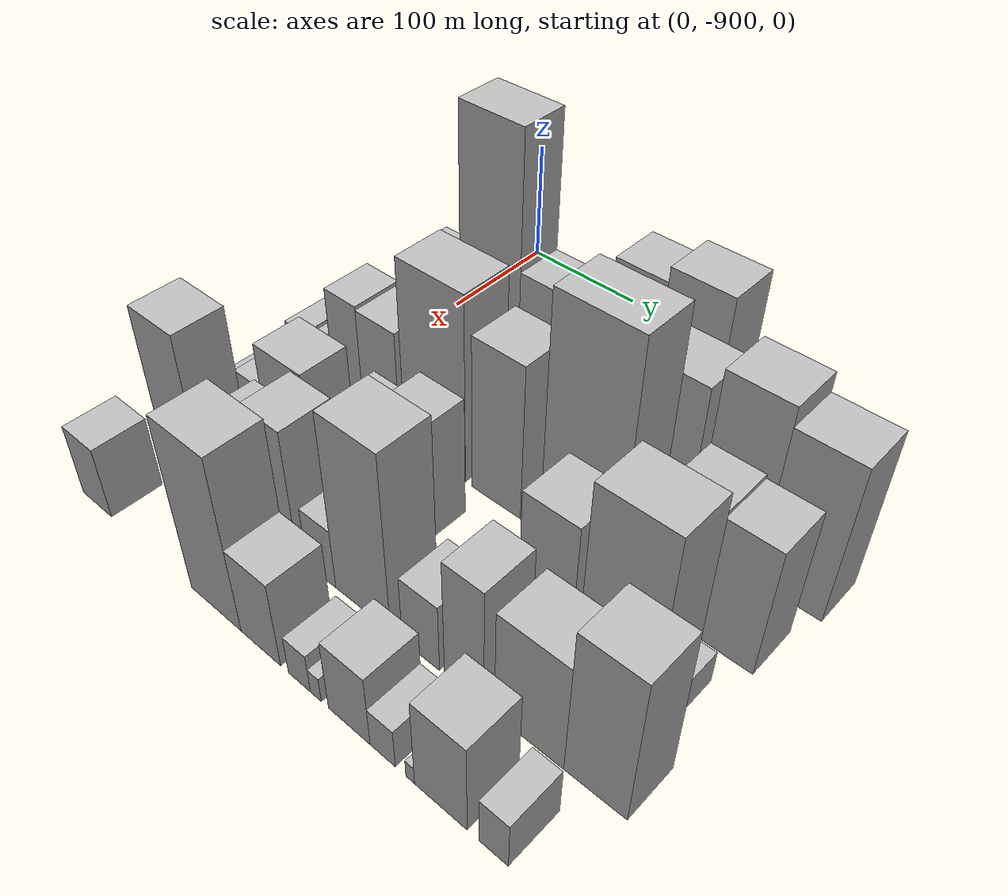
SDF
<sdf version="1.6">
 <world name="default">
  <model name="building_1">
   <static>1</static>
   <pose>100.0000 -915.0961 0 0.000000 0.000000 0.000000</pose>
   <link name="link">
    <pose>0 0 25.50 0 0 0</pose>
    <collision name="collision"><geometry><box><size>40.0000 29.8078 51.0000</size></box></geometry></collision>
    <visual name="visual">
     <cast_shadows>0</cast_shadows>
     <geometry><box><size>40.0000 29.8078 51.0000</size></box></geometry>
     <material>
      <script>
       <uri>model://HANNAS_wall/materials/scripts</uri>
       <uri>model://HANNAS_wall/materials/textures</uri>
       <name>vrc/HANNAS_wall</name>
      </script>
     </material>
    </visual>
   </link>
  </model>
  <model name="building_2">
   <static>1</static>
   <pose>100.0000 -888.7581 0 0.000000 0.000000 0.000000</pose>
   <link name="link">
    <pose>0 0 19.50 0 0 0</pose>
    <collision name="collision"><geometry><box><size>40.0000 22.8681 39.0000</size></box></geometry></collision>
    <visual name="visual">
     <cast_shadows>0</cast_shadows>
     <geometry><box><size>40.0000 22.8681 39.0000</size></box></geometry>
     <material>
      <script>
       <uri>model://HANNAS_wall/materials/scripts</uri>
       <uri>model://HANNAS_wall/materials/textures</uri>
       <name>vrc/HANNAS_wall</name>
      </script>
     </material>
    </visual>
   </link>
  </model>
  <model name="building_3">
   <static>1</static>
   <pose>100.0000 -847.5174 0 0.000000 0.000000 0.000000</pose>
   <link name="link">
    <pose>0 0 97.50 0 0 0</pose>
    <collision name="collision"><geometry><box><size>40.0000 59.6133 195.0000</size></box></geometry></collision>
    <visual name="visual">
     <cast_shadows>0</cast_shadows>
     <geometry><box><size>40.0000 59.6133 195.0000</size></box></geometry>
     <material>
      <script>
       <uri>model://HANNAS_wall/materials/scripts</uri>
       <uri>model://HANNAS_wall/materials/textures</uri>
       <name>vrc/HANNAS_wall</name>
      </script>
     </material>
    </visual>
   </link>
  </model>
  <model name="building_4">
   <static>1</static>
   <pose>100.0000 -795.0078 0 0.000000 0.000000 0.000000</pose>
   <link name="link">
    <pose>0 0 40.50 0 0 0</pose>
    <collision name="collision"><geometry><box><size>40.0000 45.4060 81.0000</size></box></geometry></collision>
    <visual name="visual">
     <cast_shadows>0</cast_shadows>
     <geometry><box><size>40.0000 45.4060 81.0000</size></box></geometry>
     <material>
      <script>
       <uri>model://HANNAS_wall/materials/scripts</uri>
       <uri>model://HANNAS_wall/materials/textures</uri>
       <name>vrc/HANNAS_wall</name>
      </script>
     </material>
    </visual>
   </link>
  </model>
  <model name="building_5">
   <static>1</static>
   <pose>100.0000 -752.6553 0 0.000000 0.000000 0.000000</pose>
   <link name="link">
    <pose>0 0 46.50 0 0 0</pose>
    <collision name="collision"><geometry><box><size>40.0000 29.2990 93.0000</size></box></geometry></collision>
    <visual name="visual">
     <cast_shadows>0</cast_shadows>
     <geometry><box><size>40.0000 29.2990 93.0000</size></box></geometry>
     <material>
      <script>
       <uri>model://HANNAS_wall/materials/scripts</uri>
       <uri>model://HANNAS_wall/materials/textures</uri>
       <name>vrc/HANNAS_wall</name>
      </script>
     </material>
    </visual>
   </link>
  </model>
  <model name="building_6">
   <static>1</static>
   <pose>100.0000 -717.2906 0 0.000000 0.000000 0.000000</pose>
   <link name="link">
    <pose>0 0 66.00 0 0 0</pose>
    <collision name="collision"><geometry><box><size>40.0000 41.4303 132.0000</size></box></geometry></collision>
    <visual name="visual">
     <cast_shadows>0</cast_shadows>
     <geometry><box><size>40.0000 41.4303 132.0000</size></box></geometry>
     <material>
      <script>
       <uri>model://HANNAS_wall/materials/scripts</uri>
       <uri>model://HANNAS_wall/materials/textures</uri>
       <name>vrc/HANNAS_wall</name>
      </script>
     </material>
    </visual>
   </link>
  </model>
  <model name="building_7">
   <static>1</static>
   <pose>100.0000 -672.4441 0 0.000000 0.000000 0.000000</pose>
   <link name="link">
    <pose>0 0 72.00 0 0 0</pose>
    <collision name="collision"><geometry><box><size>40.0000 48.2628 144.0000</size></box></geometry></collision>
    <visual name="visual">
     <cast_shadows>0</cast_shadows>
     <geometry><box><size>40.0000 48.2628 144.0000</size></box></geometry>
     <material>
      <script>
       <uri>model://HANNAS_wall/materials/scripts</uri>
       <uri>model://HANNAS_wall/materials/textures</uri>
       <name>vrc/HANNAS_wall</name>
      </script>
     </material>
    </visual>
   </link>
  </model>
  <model name="building_8">
   <static>1</static>
   <pose>100.0000 -637.3235 0 0.000000 0.000000 0.000000</pose>
   <link name="link">
    <pose>0 0 19.50 0 0 0</pose>
    <collision name="collision"><geometry><box><size>40.0000 21.9783 39.0000</size></box></geometry></collision>
    <visual name="visual">
     <cast_shadows>0</cast_shadows>
     <geometry><box><size>40.0000 21.9783 39.0000</size></box></geometry>
     <material>
      <script>
       <uri>model://HANNAS_wall/materials/scripts</uri>
       <uri>model://HANNAS_wall/materials/textures</uri>
       <name>vrc/HANNAS_wall</name>
      </script>
     </material>
    </visual>
   </link>
  </model>
  <model name="building_9">
   <static>1</static>
   <pose>100.0000 -609.5402 0 0.000000 0.000000 0.000000</pose>
   <link name="link">
    <pose>0 0 18.00 0 0 0</pose>
    <collision name="collision"><geometry><box><size>40.0000 21.5883 36.0000</size></box></geometry></collision>
    <visual name="visual">
     <cast_shadows>0</cast_shadows>
     <geometry><box><size>40.0000 21.5883 36.0000</size></box></geometry>
     <material>
      <script>
       <uri>model://HANNAS_wall/materials/scripts</uri>
       <uri>model://HANNAS_wall/materials/textures</uri>
       <name>vrc/HANNAS_wall</name>
      </script>
     </material>
    </visual>
   </link>
  </model>
  <model name="building_10">
   <static>1</static>
   <pose>100.0000 -595.3261 0 0.000000 0.000000 0.000000</pose>
   <link name="link">
    <pose>0 0 7.50 0 0 0</pose>
    <collision name="collision"><geometry><box><size>40.0000 6.8400 15.0000</size></box></geometry></collision>
    <visual name="visual">
     <cast_shadows>0</cast_shadows>
     <geometry><box><size>40.0000 6.8400 15.0000</size></box></geometry>
     <material>
      <script>
       <uri>model://HANNAS_wall/materials/scripts</uri>
       <uri>model://HANNAS_wall/materials/textures</uri>
       <name>vrc/HANNAS_wall</name>
      </script>
     </material>
    </visual>
   </link>
  </model>
  <model name="building_11">
   <static>1</static>
   <pose>100.0000 -575.8475 0 0.000000 0.000000 0.000000</pose>
   <link name="link">
    <pose>0 0 27.00 0 0 0</pose>
    <collision name="collision"><geometry><box><size>40.0000 32.1174 54.0000</size></box></geometry></collision>
    <visual name="visual">
     <cast_shadows>0</cast_shadows>
     <geometry><box><size>40.0000 32.1174 54.0000</size></box></geometry>
     <material>
      <script>
       <uri>model://HANNAS_wall/materials/scripts</uri>
       <uri>model://HANNAS_wall/materials/textures</uri>
       <name>vrc/HANNAS_wall</name>
      </script>
     </material>
    </visual>
   </link>
  </model>
  <model name="building_12">
   <static>1</static>
   <pose>100.0000 -549.9825 0 0.000000 0.000000 0.000000</pose>
   <link name="link">
    <pose>0 0 19.50 0 0 0</pose>
    <collision name="collision"><geometry><box><size>40.0000 19.6125 39.0000</size></box></geometry></collision>
    <visual name="visual">
     <cast_shadows>0</cast_shadows>
     <geometry><box><size>40.0000 19.6125 39.0000</size></box></geometry>
     <material>
      <script>
       <uri>model://HANNAS_wall/materials/scripts</uri>
       <uri>model://HANNAS_wall/materials/textures</uri>
       <name>vrc/HANNAS_wall</name>
      </script>
     </material>
    </visual>
   </link>
  </model>
  <model name="building_58">
   <static>1</static>
   <pose>160.0000 -923.6007 0 0.000000 0.000000 0.000000</pose>
   <link name="link">
    <pose>0 0 15.00 0 0 0</pose>
    <collision name="collision"><geometry><box><size>40.0000 16.7985 30.0000</size></box></geometry></collision>
    <visual name="visual">
     <cast_shadows>0</cast_shadows>
     <geometry><box><size>40.0000 16.7985 30.0000</size></box></geometry>
     <material>
      <script>
       <uri>model://HANNAS_wall/materials/scripts</uri>
       <uri>model://HANNAS_wall/materials/textures</uri>
       <name>vrc/HANNAS_wall</name>
      </script>
     </material>
    </visual>
   </link>
  </model>
  <model name="building_59">
   <static>1</static>
   <pose>160.0000 -891.9568 0 0.000000 0.000000 0.000000</pose>
   <link name="link">
    <pose>0 0 22.50 0 0 0</pose>
    <collision name="collision"><geometry><box><size>40.0000 26.4893 45.0000</size></box></geometry></collision>
    <visual name="visual">
     <cast_shadows>0</cast_shadows>
     <geometry><box><size>40.0000 26.4893 45.0000</size></box></geometry>
     <material>
      <script>
       <uri>model://HANNAS_wall/materials/scripts</uri>
       <uri>model://HANNAS_wall/materials/textures</uri>
       <name>vrc/HANNAS_wall</name>
      </script>
     </material>
    </visual>
   </link>
  </model>
  <model name="building_60">
   <static>1</static>
   <pose>160.0000 -866.0776 0 0.000000 0.000000 0.000000</pose>
   <link name="link">
    <pose>0 0 24.00 0 0 0</pose>
    <collision name="collision"><geometry><box><size>40.0000 25.2691 48.0000</size></box></geometry></collision>
    <visual name="visual">
     <cast_shadows>0</cast_shadows>
     <geometry><box><size>40.0000 25.2691 48.0000</size></box></geometry>
     <material>
      <script>
       <uri>model://HANNAS_wall/materials/scripts</uri>
       <uri>model://HANNAS_wall/materials/textures</uri>
       <name>vrc/HANNAS_wall</name>
      </script>
     </material>
    </visual>
   </link>
  </model>
  <model name="building_61">
   <static>1</static>
   <pose>160.0000 -830.7815 0 0.000000 0.000000 0.000000</pose>
   <link name="link">
    <pose>0 0 33.00 0 0 0</pose>
    <collision name="collision"><geometry><box><size>40.0000 35.3231 66.0000</size></box></geometry></collision>
    <visual name="visual">
     <cast_shadows>0</cast_shadows>
     <geometry><box><size>40.0000 35.3231 66.0000</size></box></geometry>
     <material>
      <script>
       <uri>model://HANNAS_wall/materials/scripts</uri>
       <uri>model://HANNAS_wall/materials/textures</uri>
       <name>vrc/HANNAS_wall</name>
      </script>
     </material>
    </visual>
   </link>
  </model>
  <model name="building_62">
   <static>1</static>
   <pose>160.0000 -798.9132 0 0.000000 0.000000 0.000000</pose>
   <link name="link">
    <pose>0 0 25.50 0 0 0</pose>
    <collision name="collision"><geometry><box><size>40.0000 28.4136 51.0000</size></box></geometry></collision>
    <visual name="visual">
     <cast_shadows>0</cast_shadows>
     <geometry><box><size>40.0000 28.4136 51.0000</size></box></geometry>
     <material>
      <script>
       <uri>model://HANNAS_wall/materials/scripts</uri>
       <uri>model://HANNAS_wall/materials/textures</uri>
       <name>vrc/HANNAS_wall</name>
      </script>
     </material>
    </visual>
   </link>
  </model>
  <model name="building_63">
   <static>1</static>
   <pose>160.0000 -766.3339 0 0.000000 0.000000 0.000000</pose>
   <link name="link">
    <pose>0 0 33.00 0 0 0</pose>
    <collision name="collision"><geometry><box><size>40.0000 36.7451 66.0000</size></box></geometry></collision>
    <visual name="visual">
     <cast_shadows>0</cast_shadows>
     <geometry><box><size>40.0000 36.7451 66.0000</size></box></geometry>
     <material>
      <script>
       <uri>model://HANNAS_wall/materials/scripts</uri>
       <uri>model://HANNAS_wall/materials/textures</uri>
       <name>vrc/HANNAS_wall</name>
      </script>
     </material>
    </visual>
   </link>
  </model>
  <model name="building_64">
   <static>1</static>
   <pose>160.0000 -738.1675 0 0.000000 0.000000 0.000000</pose>
   <link name="link">
    <pose>0 0 18.00 0 0 0</pose>
    <collision name="collision"><geometry><box><size>40.0000 19.5877 36.0000</size></box></geometry></collision>
    <visual name="visual">
     <cast_shadows>0</cast_shadows>
     <geometry><box><size>40.0000 19.5877 36.0000</size></box></geometry>
     <material>
      <script>
       <uri>model://HANNAS_wall/materials/scripts</uri>
       <uri>model://HANNAS_wall/materials/textures</uri>
       <name>vrc/HANNAS_wall</name>
      </script>
     </material>
    </visual>
   </link>
  </model>
  <model name="building_65">
   <static>1</static>
   <pose>160.0000 -722.6326 0 0.000000 0.000000 0.000000</pose>
   <link name="link">
    <pose>0 0 13.50 0 0 0</pose>
    <collision name="collision"><geometry><box><size>40.0000 11.4819 27.0000</size></box></geometry></collision>
    <visual name="visual">
     <cast_shadows>0</cast_shadows>
     <geometry><box><size>40.0000 11.4819 27.0000</size></box></geometry>
     <material>
      <script>
       <uri>model://HANNAS_wall/materials/scripts</uri>
       <uri>model://HANNAS_wall/materials/textures</uri>
       <name>vrc/HANNAS_wall</name>
      </script>
     </material>
    </visual>
   </link>
  </model>
  <model name="building_66">
   <static>1</static>
   <pose>160.0000 -694.6272 0 0.000000 0.000000 0.000000</pose>
   <link name="link">
    <pose>0 0 37.50 0 0 0</pose>
    <collision name="collision"><geometry><box><size>40.0000 44.5290 75.0000</size></box></geometry></collision>
    <visual name="visual">
     <cast_shadows>0</cast_shadows>
     <geometry><box><size>40.0000 44.5290 75.0000</size></box></geometry>
     <material>
      <script>
       <uri>model://HANNAS_wall/materials/scripts</uri>
       <uri>model://HANNAS_wall/materials/textures</uri>
       <name>vrc/HANNAS_wall</name>
      </script>
     </material>
    </visual>
   </link>
  </model>
  <model name="building_67">
   <static>1</static>
   <pose>160.0000 -647.6754 0 0.000000 0.000000 0.000000</pose>
   <link name="link">
    <pose>0 0 63.00 0 0 0</pose>
    <collision name="collision"><geometry><box><size>40.0000 49.3744 126.0000</size></box></geometry></collision>
    <visual name="visual">
     <cast_shadows>0</cast_shadows>
     <geometry><box><size>40.0000 49.3744 126.0000</size></box></geometry>
     <material>
      <script>
       <uri>model://HANNAS_wall/materials/scripts</uri>
       <uri>model://HANNAS_wall/materials/textures</uri>
       <name>vrc/HANNAS_wall</name>
      </script>
     </material>
    </visual>
   </link>
  </model>
  <model name="building_68">
   <static>1</static>
   <pose>160.0000 -593.7557 0 0.000000 0.000000 0.000000</pose>
   <link name="link">
    <pose>0 0 72.00 0 0 0</pose>
    <collision name="collision"><geometry><box><size>40.0000 46.4650 144.0000</size></box></geometry></collision>
    <visual name="visual">
     <cast_shadows>0</cast_shadows>
     <geometry><box><size>40.0000 46.4650 144.0000</size></box></geometry>
     <material>
      <script>
       <uri>model://HANNAS_wall/materials/scripts</uri>
       <uri>model://HANNAS_wall/materials/textures</uri>
       <name>vrc/HANNAS_wall</name>
      </script>
     </material>
    </visual>
   </link>
  </model>
  <model name="building_69">
   <static>1</static>
   <pose>160.0000 -547.1965 0 0.000000 0.000000 0.000000</pose>
   <link name="link">
    <pose>0 0 64.50 0 0 0</pose>
    <collision name="collision"><geometry><box><size>40.0000 46.6534 129.0000</size></box></geometry></collision>
    <visual name="visual">
     <cast_shadows>0</cast_shadows>
     <geometry><box><size>40.0000 46.6534 129.0000</size></box></geometry>
     <material>
      <script>
       <uri>model://HANNAS_wall/materials/scripts</uri>
       <uri>model://HANNAS_wall/materials/textures</uri>
       <name>vrc/HANNAS_wall</name>
      </script>
     </material>
    </visual>
   </link>
  </model>
  <model name="building_116">
   <static>1</static>
   <pose>220.0000 -929.1430 0 0.000000 0.000000 0.000000</pose>
   <link name="link">
    <pose>0 0 21.00 0 0 0</pose>
    <collision name="collision"><geometry><box><size>40.0000 21.7141 42.0000</size></box></geometry></collision>
    <visual name="visual">
     <cast_shadows>0</cast_shadows>
     <geometry><box><size>40.0000 21.7141 42.0000</size></box></geometry>
     <material>
      <script>
       <uri>model://HANNAS_wall/materials/scripts</uri>
       <uri>model://HANNAS_wall/materials/textures</uri>
       <name>vrc/HANNAS_wall</name>
      </script>
     </material>
    </visual>
   </link>
  </model>
  <model name="building_117">
   <static>1</static>
   <pose>220.0000 -908.4838 0 0.000000 0.000000 0.000000</pose>
   <link name="link">
    <pose>0 0 19.50 0 0 0</pose>
    <collision name="collision"><geometry><box><size>40.0000 19.6042 39.0000</size></box></geometry></collision>
    <visual name="visual">
     <cast_shadows>0</cast_shadows>
     <geometry><box><size>40.0000 19.6042 39.0000</size></box></geometry>
     <material>
      <script>
       <uri>model://HANNAS_wall/materials/scripts</uri>
       <uri>model://HANNAS_wall/materials/textures</uri>
       <name>vrc/HANNAS_wall</name>
      </script>
     </material>
    </visual>
   </link>
  </model>
  <model name="building_118">
   <static>1</static>
   <pose>220.0000 -894.2919 0 0.000000 0.000000 0.000000</pose>
   <link name="link">
    <pose>0 0 10.50 0 0 0</pose>
    <collision name="collision"><geometry><box><size>40.0000 8.7795 21.0000</size></box></geometry></collision>
    <visual name="visual">
     <cast_shadows>0</cast_shadows>
     <geometry><box><size>40.0000 8.7795 21.0000</size></box></geometry>
     <material>
      <script>
       <uri>model://HANNAS_wall/materials/scripts</uri>
       <uri>model://HANNAS_wall/materials/textures</uri>
       <name>vrc/HANNAS_wall</name>
      </script>
     </material>
    </visual>
   </link>
  </model>
  <model name="building_119">
   <static>1</static>
   <pose>220.0000 -874.6284 0 0.000000 0.000000 0.000000</pose>
   <link name="link">
    <pose>0 0 48.00 0 0 0</pose>
    <collision name="collision"><geometry><box><size>40.0000 30.5474 96.0000</size></box></geometry></collision>
    <visual name="visual">
     <cast_shadows>0</cast_shadows>
     <geometry><box><size>40.0000 30.5474 96.0000</size></box></geometry>
     <material>
      <script>
       <uri>model://HANNAS_wall/materials/scripts</uri>
       <uri>model://HANNAS_wall/materials/textures</uri>
       <name>vrc/HANNAS_wall</name>
      </script>
     </material>
    </visual>
   </link>
  </model>
  <model name="building_120">
   <static>1</static>
   <pose>220.0000 -840.8610 0 0.000000 0.000000 0.000000</pose>
   <link name="link">
    <pose>0 0 46.50 0 0 0</pose>
    <collision name="collision"><geometry><box><size>40.0000 36.9874 93.0000</size></box></geometry></collision>
    <visual name="visual">
     <cast_shadows>0</cast_shadows>
     <geometry><box><size>40.0000 36.9874 93.0000</size></box></geometry>
     <material>
      <script>
       <uri>model://HANNAS_wall/materials/scripts</uri>
       <uri>model://HANNAS_wall/materials/textures</uri>
       <name>vrc/HANNAS_wall</name>
      </script>
     </material>
    </visual>
   </link>
  </model>
  <model name="building_121">
   <static>1</static>
   <pose>220.0000 -788.4637 0 0.000000 0.000000 0.000000</pose>
   <link name="link">
    <pose>0 0 78.00 0 0 0</pose>
    <collision name="collision"><geometry><box><size>40.0000 57.8073 156.0000</size></box></geometry></collision>
    <visual name="visual">
     <cast_shadows>0</cast_shadows>
     <geometry><box><size>40.0000 57.8073 156.0000</size></box></geometry>
     <material>
      <script>
       <uri>model://HANNAS_wall/materials/scripts</uri>
       <uri>model://HANNAS_wall/materials/textures</uri>
       <name>vrc/HANNAS_wall</name>
      </script>
     </material>
    </visual>
   </link>
  </model>
  <model name="building_122">
   <static>1</static>
   <pose>220.0000 -732.0630 0 0.000000 0.000000 0.000000</pose>
   <link name="link">
    <pose>0 0 64.50 0 0 0</pose>
    <collision name="collision"><geometry><box><size>40.0000 42.9941 129.0000</size></box></geometry></collision>
    <visual name="visual">
     <cast_shadows>0</cast_shadows>
     <geometry><box><size>40.0000 42.9941 129.0000</size></box></geometry>
     <material>
      <script>
       <uri>model://HANNAS_wall/materials/scripts</uri>
       <uri>model://HANNAS_wall/materials/textures</uri>
       <name>vrc/HANNAS_wall</name>
      </script>
     </material>
    </visual>
   </link>
  </model>
  <model name="building_123">
   <static>1</static>
   <pose>220.0000 -706.3105 0 0.000000 0.000000 0.000000</pose>
   <link name="link">
    <pose>0 0 9.00 0 0 0</pose>
    <collision name="collision"><geometry><box><size>40.0000 8.5108 18.0000</size></box></geometry></collision>
    <visual name="visual">
     <cast_shadows>0</cast_shadows>
     <geometry><box><size>40.0000 8.5108 18.0000</size></box></geometry>
     <material>
      <script>
       <uri>model://HANNAS_wall/materials/scripts</uri>
       <uri>model://HANNAS_wall/materials/textures</uri>
       <name>vrc/HANNAS_wall</name>
      </script>
     </material>
    </visual>
   </link>
  </model>
  <model name="building_124">
   <static>1</static>
   <pose>220.0000 -662.7629 0 0.000000 0.000000 0.000000</pose>
   <link name="link">
    <pose>0 0 97.50 0 0 0</pose>
    <collision name="collision"><geometry><box><size>40.0000 62.5845 195.0000</size></box></geometry></collision>
    <visual name="visual">
     <cast_shadows>0</cast_shadows>
     <geometry><box><size>40.0000 62.5845 195.0000</size></box></geometry>
     <material>
      <script>
       <uri>model://HANNAS_wall/materials/scripts</uri>
       <uri>model://HANNAS_wall/materials/textures</uri>
       <name>vrc/HANNAS_wall</name>
      </script>
     </material>
    </visual>
   </link>
  </model>
  <model name="building_125">
   <static>1</static>
   <pose>220.0000 -617.2352 0 0.000000 0.000000 0.000000</pose>
   <link name="link">
    <pose>0 0 18.00 0 0 0</pose>
    <collision name="collision"><geometry><box><size>40.0000 20.4708 36.0000</size></box></geometry></collision>
    <visual name="visual">
     <cast_shadows>0</cast_shadows>
     <geometry><box><size>40.0000 20.4708 36.0000</size></box></geometry>
     <material>
      <script>
       <uri>model://HANNAS_wall/materials/scripts</uri>
       <uri>model://HANNAS_wall/materials/textures</uri>
       <name>vrc/HANNAS_wall</name>
      </script>
     </material>
    </visual>
   </link>
  </model>
  <model name="building_126">
   <static>1</static>
   <pose>220.0000 -588.6461 0 0.000000 0.000000 0.000000</pose>
   <link name="link">
    <pose>0 0 54.00 0 0 0</pose>
    <collision name="collision"><geometry><box><size>40.0000 36.7074 108.0000</size></box></geometry></collision>
    <visual name="visual">
     <cast_shadows>0</cast_shadows>
     <geometry><box><size>40.0000 36.7074 108.0000</size></box></geometry>
     <material>
      <script>
       <uri>model://HANNAS_wall/materials/scripts</uri>
       <uri>model://HANNAS_wall/materials/textures</uri>
       <name>vrc/HANNAS_wall</name>
      </script>
     </material>
    </visual>
   </link>
  </model>
  <model name="building_127">
   <static>1</static>
   <pose>220.0000 -551.9482 0 0.000000 0.000000 0.000000</pose>
   <link name="link">
    <pose>0 0 52.50 0 0 0</pose>
    <collision name="collision"><geometry><box><size>40.0000 36.6884 105.0000</size></box></geometry></collision>
    <visual name="visual">
     <cast_shadows>0</cast_shadows>
     <geometry><box><size>40.0000 36.6884 105.0000</size></box></geometry>
     <material>
      <script>
       <uri>model://HANNAS_wall/materials/scripts</uri>
       <uri>model://HANNAS_wall/materials/textures</uri>
       <name>vrc/HANNAS_wall</name>
      </script>
     </material>
    </visual>
   </link>
  </model>
  <model name="building_171">
   <static>1</static>
   <pose>280.0000 -931.5181 0 0.000000 0.000000 0.000000</pose>
   <link name="link">
    <pose>0 0 15.00 0 0 0</pose>
    <collision name="collision"><geometry><box><size>40.0000 16.9638 30.0000</size></box></geometry></collision>
    <visual name="visual">
     <cast_shadows>0</cast_shadows>
     <geometry><box><size>40.0000 16.9638 30.0000</size></box></geometry>
     <material>
      <script>
       <uri>model://HANNAS_wall/materials/scripts</uri>
       <uri>model://HANNAS_wall/materials/textures</uri>
       <name>vrc/HANNAS_wall</name>
      </script>
     </material>
    </visual>
   </link>
  </model>
  <model name="building_172">
   <static>1</static>
   <pose>280.0000 -911.7326 0 0.000000 0.000000 0.000000</pose>
   <link name="link">
    <pose>0 0 21.00 0 0 0</pose>
    <collision name="collision"><geometry><box><size>40.0000 22.6072 42.0000</size></box></geometry></collision>
    <visual name="visual">
     <cast_shadows>0</cast_shadows>
     <geometry><box><size>40.0000 22.6072 42.0000</size></box></geometry>
     <material>
      <script>
       <uri>model://HANNAS_wall/materials/scripts</uri>
       <uri>model://HANNAS_wall/materials/textures</uri>
       <name>vrc/HANNAS_wall</name>
      </script>
     </material>
    </visual>
   </link>
  </model>
  <model name="building_173">
   <static>1</static>
   <pose>280.0000 -870.9212 0 0.000000 0.000000 0.000000</pose>
   <link name="link">
    <pose>0 0 40.50 0 0 0</pose>
    <collision name="collision"><geometry><box><size>40.0000 47.0157 81.0000</size></box></geometry></collision>
    <visual name="visual">
     <cast_shadows>0</cast_shadows>
     <geometry><box><size>40.0000 47.0157 81.0000</size></box></geometry>
     <material>
      <script>
       <uri>model://HANNAS_wall/materials/scripts</uri>
       <uri>model://HANNAS_wall/materials/textures</uri>
       <name>vrc/HANNAS_wall</name>
      </script>
     </material>
    </visual>
   </link>
  </model>
  <model name="building_174">
   <static>1</static>
   <pose>280.0000 -834.2301 0 0.000000 0.000000 0.000000</pose>
   <link name="link">
    <pose>0 0 22.50 0 0 0</pose>
    <collision name="collision"><geometry><box><size>40.0000 26.3665 45.0000</size></box></geometry></collision>
    <visual name="visual">
     <cast_shadows>0</cast_shadows>
     <geometry><box><size>40.0000 26.3665 45.0000</size></box></geometry>
     <material>
      <script>
       <uri>model://HANNAS_wall/materials/scripts</uri>
       <uri>model://HANNAS_wall/materials/textures</uri>
       <name>vrc/HANNAS_wall</name>
      </script>
     </material>
    </visual>
   </link>
  </model>
  <model name="building_175">
   <static>1</static>
   <pose>280.0000 -799.5841 0 0.000000 0.000000 0.000000</pose>
   <link name="link">
    <pose>0 0 37.50 0 0 0</pose>
    <collision name="collision"><geometry><box><size>40.0000 42.9255 75.0000</size></box></geometry></collision>
    <visual name="visual">
     <cast_shadows>0</cast_shadows>
     <geometry><box><size>40.0000 42.9255 75.0000</size></box></geometry>
     <material>
      <script>
       <uri>model://HANNAS_wall/materials/scripts</uri>
       <uri>model://HANNAS_wall/materials/textures</uri>
       <name>vrc/HANNAS_wall</name>
      </script>
     </material>
    </visual>
   </link>
  </model>
  <model name="building_176">
   <static>1</static>
   <pose>280.0000 -759.5253 0 0.000000 0.000000 0.000000</pose>
   <link name="link">
    <pose>0 0 49.50 0 0 0</pose>
    <collision name="collision"><geometry><box><size>40.0000 37.1923 99.0000</size></box></geometry></collision>
    <visual name="visual">
     <cast_shadows>0</cast_shadows>
     <geometry><box><size>40.0000 37.1923 99.0000</size></box></geometry>
     <material>
      <script>
       <uri>model://HANNAS_wall/materials/scripts</uri>
       <uri>model://HANNAS_wall/materials/textures</uri>
       <name>vrc/HANNAS_wall</name>
      </script>
     </material>
    </visual>
   </link>
  </model>
  <model name="building_177">
   <static>1</static>
   <pose>280.0000 -639.9633 0 0.000000 0.000000 0.000000</pose>
   <link name="link">
    <pose>0 0 54.00 0 0 0</pose>
    <collision name="collision"><geometry><box><size>40.0000 40.6439 108.0000</size></box></geometry></collision>
    <visual name="visual">
     <cast_shadows>0</cast_shadows>
     <geometry><box><size>40.0000 40.6439 108.0000</size></box></geometry>
     <material>
      <script>
       <uri>model://HANNAS_wall/materials/scripts</uri>
       <uri>model://HANNAS_wall/materials/textures</uri>
       <name>vrc/HANNAS_wall</name>
      </script>
     </material>
    </visual>
   </link>
  </model>
  <model name="building_178">
   <static>1</static>
   <pose>280.0000 -587.3668 0 0.000000 0.000000 0.000000</pose>
   <link name="link">
    <pose>0 0 73.50 0 0 0</pose>
    <collision name="collision"><geometry><box><size>40.0000 54.5491 147.0000</size></box></geometry></collision>
    <visual name="visual">
     <cast_shadows>0</cast_shadows>
     <geometry><box><size>40.0000 54.5491 147.0000</size></box></geometry>
     <material>
      <script>
       <uri>model://HANNAS_wall/materials/scripts</uri>
       <uri>model://HANNAS_wall/materials/textures</uri>
       <name>vrc/HANNAS_wall</name>
      </script>
     </material>
    </visual>
   </link>
  </model>
  <model name="building_179">
   <static>1</static>
   <pose>280.0000 -554.4319 0 0.000000 0.000000 0.000000</pose>
   <link name="link">
    <pose>0 0 13.50 0 0 0</pose>
    <collision name="collision"><geometry><box><size>40.0000 11.3207 27.0000</size></box></geometry></collision>
    <visual name="visual">
     <cast_shadows>0</cast_shadows>
     <geometry><box><size>40.0000 11.3207 27.0000</size></box></geometry>
     <material>
      <script>
       <uri>model://HANNAS_wall/materials/scripts</uri>
       <uri>model://HANNAS_wall/materials/textures</uri>
       <name>vrc/HANNAS_wall</name>
      </script>
     </material>
    </visual>
   </link>
  </model>
  <model name="building_222">
   <static>1</static>
   <pose>340.0000 -910.7062 0 0.000000 0.000000 0.000000</pose>
   <link name="link">
    <pose>0 0 63.00 0 0 0</pose>
    <collision name="collision"><geometry><box><size>40.0000 44.5876 126.0000</size></box></geometry></collision>
    <visual name="visual">
     <cast_shadows>0</cast_shadows>
     <geometry><box><size>40.0000 44.5876 126.0000</size></box></geometry>
     <material>
      <script>
       <uri>model://HANNAS_wall/materials/scripts</uri>
       <uri>model://HANNAS_wall/materials/textures</uri>
       <name>vrc/HANNAS_wall</name>
      </script>
     </material>
    </visual>
   </link>
  </model>
  <model name="building_223">
   <static>1</static>
   <pose>340.0000 -881.9904 0 0.000000 0.000000 0.000000</pose>
   <link name="link">
    <pose>0 0 13.50 0 0 0</pose>
    <collision name="collision"><geometry><box><size>40.0000 12.8440 27.0000</size></box></geometry></collision>
    <visual name="visual">
     <cast_shadows>0</cast_shadows>
     <geometry><box><size>40.0000 12.8440 27.0000</size></box></geometry>
     <material>
      <script>
       <uri>model://HANNAS_wall/materials/scripts</uri>
       <uri>model://HANNAS_wall/materials/textures</uri>
       <name>vrc/HANNAS_wall</name>
      </script>
     </material>
    </visual>
   </link>
  </model>
  <model name="building_224">
   <static>1</static>
   <pose>340.0000 -872.0544 0 0.000000 0.000000 0.000000</pose>
   <link name="link">
    <pose>0 0 7.50 0 0 0</pose>
    <collision name="collision"><geometry><box><size>40.0000 7.0281 15.0000</size></box></geometry></collision>
    <visual name="visual">
     <cast_shadows>0</cast_shadows>
     <geometry><box><size>40.0000 7.0281 15.0000</size></box></geometry>
     <material>
      <script>
       <uri>model://HANNAS_wall/materials/scripts</uri>
       <uri>model://HANNAS_wall/materials/textures</uri>
       <name>vrc/HANNAS_wall</name>
      </script>
     </material>
    </visual>
   </link>
  </model>
  <model name="building_225">
   <static>1</static>
   <pose>340.0000 -848.3906 0 0.000000 0.000000 0.000000</pose>
   <link name="link">
    <pose>0 0 39.00 0 0 0</pose>
    <collision name="collision"><geometry><box><size>40.0000 40.2994 78.0000</size></box></geometry></collision>
    <visual name="visual">
     <cast_shadows>0</cast_shadows>
     <geometry><box><size>40.0000 40.2994 78.0000</size></box></geometry>
     <material>
      <script>
       <uri>model://HANNAS_wall/materials/scripts</uri>
       <uri>model://HANNAS_wall/materials/textures</uri>
       <name>vrc/HANNAS_wall</name>
      </script>
     </material>
    </visual>
   </link>
  </model>
  <model name="building_226">
   <static>1</static>
   <pose>340.0000 -810.1238 0 0.000000 0.000000 0.000000</pose>
   <link name="link">
    <pose>0 0 54.00 0 0 0</pose>
    <collision name="collision"><geometry><box><size>40.0000 36.2344 108.0000</size></box></geometry></collision>
    <visual name="visual">
     <cast_shadows>0</cast_shadows>
     <geometry><box><size>40.0000 36.2344 108.0000</size></box></geometry>
     <material>
      <script>
       <uri>model://HANNAS_wall/materials/scripts</uri>
       <uri>model://HANNAS_wall/materials/textures</uri>
       <name>vrc/HANNAS_wall</name>
      </script>
     </material>
    </visual>
   </link>
  </model>
  <model name="building_227">
   <static>1</static>
   <pose>340.0000 -769.5393 0 0.000000 0.000000 0.000000</pose>
   <link name="link">
    <pose>0 0 25.50 0 0 0</pose>
    <collision name="collision"><geometry><box><size>40.0000 26.9346 51.0000</size></box></geometry></collision>
    <visual name="visual">
     <cast_shadows>0</cast_shadows>
     <geometry><box><size>40.0000 26.9346 51.0000</size></box></geometry>
     <material>
      <script>
       <uri>model://HANNAS_wall/materials/scripts</uri>
       <uri>model://HANNAS_wall/materials/textures</uri>
       <name>vrc/HANNAS_wall</name>
      </script>
     </material>
    </visual>
   </link>
  </model>
  <model name="building_228">
   <static>1</static>
   <pose>340.0000 -731.9612 0 0.000000 0.000000 0.000000</pose>
   <link name="link">
    <pose>0 0 73.50 0 0 0</pose>
    <collision name="collision"><geometry><box><size>40.0000 48.2214 147.0000</size></box></geometry></collision>
    <visual name="visual">
     <cast_shadows>0</cast_shadows>
     <geometry><box><size>40.0000 48.2214 147.0000</size></box></geometry>
     <material>
      <script>
       <uri>model://HANNAS_wall/materials/scripts</uri>
       <uri>model://HANNAS_wall/materials/textures</uri>
       <name>vrc/HANNAS_wall</name>
      </script>
     </material>
    </visual>
   </link>
  </model>
  <model name="building_229">
   <static>1</static>
   <pose>340.0000 -682.5718 0 0.000000 0.000000 0.000000</pose>
   <link name="link">
    <pose>0 0 28.50 0 0 0</pose>
    <collision name="collision"><geometry><box><size>40.0000 30.5574 57.0000</size></box></geometry></collision>
    <visual name="visual">
     <cast_shadows>0</cast_shadows>
     <geometry><box><size>40.0000 30.5574 57.0000</size></box></geometry>
     <material>
      <script>
       <uri>model://HANNAS_wall/materials/scripts</uri>
       <uri>model://HANNAS_wall/materials/textures</uri>
       <name>vrc/HANNAS_wall</name>
      </script>
     </material>
    </visual>
   </link>
  </model>
  <model name="building_230">
   <static>1</static>
   <pose>340.0000 -648.0921 0 0.000000 0.000000 0.000000</pose>
   <link name="link">
    <pose>0 0 49.50 0 0 0</pose>
    <collision name="collision"><geometry><box><size>40.0000 30.4020 99.0000</size></box></geometry></collision>
    <visual name="visual">
     <cast_shadows>0</cast_shadows>
     <geometry><box><size>40.0000 30.4020 99.0000</size></box></geometry>
     <material>
      <script>
       <uri>model://HANNAS_wall/materials/scripts</uri>
       <uri>model://HANNAS_wall/materials/textures</uri>
       <name>vrc/HANNAS_wall</name>
      </script>
     </material>
    </visual>
   </link>
  </model>
  <model name="building_231">
   <static>1</static>
   <pose>340.0000 -599.9194 0 0.000000 0.000000 0.000000</pose>
   <link name="link">
    <pose>0 0 45.00 0 0 0</pose>
    <collision name="collision"><geometry><box><size>40.0000 49.9433 90.0000</size></box></geometry></collision>
    <visual name="visual">
     <cast_shadows>0</cast_shadows>
     <geometry><box><size>40.0000 49.9433 90.0000</size></box></geometry>
     <material>
      <script>
       <uri>model://HANNAS_wall/materials/scripts</uri>
       <uri>model://HANNAS_wall/materials/textures</uri>
       <name>vrc/HANNAS_wall</name>
      </script>
     </material>
    </visual>
   </link>
  </model>
  <model name="building_232">
   <static>1</static>
   <pose>340.0000 -553.6983 0 0.000000 0.000000 0.000000</pose>
   <link name="link">
    <pose>0 0 60.00 0 0 0</pose>
    <collision name="collision"><geometry><box><size>40.0000 42.4988 120.0000</size></box></geometry></collision>
    <visual name="visual">
     <cast_shadows>0</cast_shadows>
     <geometry><box><size>40.0000 42.4988 120.0000</size></box></geometry>
     <material>
      <script>
       <uri>model://HANNAS_wall/materials/scripts</uri>
       <uri>model://HANNAS_wall/materials/textures</uri>
       <name>vrc/HANNAS_wall</name>
      </script>
     </material>
    </visual>
   </link>
  </model>
  <model name="building_278">
   <static>1</static>
   <pose>400.0000 -923.7138 0 0.000000 0.000000 0.000000</pose>
   <link name="link">
    <pose>0 0 30.00 0 0 0</pose>
    <collision name="collision"><geometry><box><size>40.0000 32.5725 60.0000</size></box></geometry></collision>
    <visual name="visual">
     <cast_shadows>0</cast_shadows>
     <geometry><box><size>40.0000 32.5725 60.0000</size></box></geometry>
     <material>
      <script>
       <uri>model://HANNAS_wall/materials/scripts</uri>
       <uri>model://HANNAS_wall/materials/textures</uri>
       <name>vrc/HANNAS_wall</name>
      </script>
     </material>
    </visual>
   </link>
  </model>
  <model name="building_279">
   <static>1</static>
   <pose>400.0000 -797.1208 0 0.000000 0.000000 0.000000</pose>
   <link name="link">
    <pose>0 0 72.00 0 0 0</pose>
    <collision name="collision"><geometry><box><size>40.0000 48.2045 144.0000</size></box></geometry></collision>
    <visual name="visual">
     <cast_shadows>0</cast_shadows>
     <geometry><box><size>40.0000 48.2045 144.0000</size></box></geometry>
     <material>
      <script>
       <uri>model://HANNAS_wall/materials/scripts</uri>
       <uri>model://HANNAS_wall/materials/textures</uri>
       <name>vrc/HANNAS_wall</name>
      </script>
     </material>
    </visual>
   </link>
  </model>
  <model name="building_280">
   <static>1</static>
   <pose>400.0000 -754.8977 0 0.000000 0.000000 0.000000</pose>
   <link name="link">
    <pose>0 0 36.00 0 0 0</pose>
    <collision name="collision"><geometry><box><size>40.0000 36.2417 72.0000</size></box></geometry></collision>
    <visual name="visual">
     <cast_shadows>0</cast_shadows>
     <geometry><box><size>40.0000 36.2417 72.0000</size></box></geometry>
     <material>
      <script>
       <uri>model://HANNAS_wall/materials/scripts</uri>
       <uri>model://HANNAS_wall/materials/textures</uri>
       <name>vrc/HANNAS_wall</name>
      </script>
     </material>
    </visual>
   </link>
  </model>
  <model name="building_281">
   <static>1</static>
   <pose>400.0000 -720.2570 0 0.000000 0.000000 0.000000</pose>
   <link name="link">
    <pose>0 0 16.50 0 0 0</pose>
    <collision name="collision"><geometry><box><size>40.0000 19.0397 33.0000</size></box></geometry></collision>
    <visual name="visual">
     <cast_shadows>0</cast_shadows>
     <geometry><box><size>40.0000 19.0397 33.0000</size></box></geometry>
     <material>
      <script>
       <uri>model://HANNAS_wall/materials/scripts</uri>
       <uri>model://HANNAS_wall/materials/textures</uri>
       <name>vrc/HANNAS_wall</name>
      </script>
     </material>
    </visual>
   </link>
  </model>
  <model name="building_282">
   <static>1</static>
   <pose>400.0000 -706.0946 0 0.000000 0.000000 0.000000</pose>
   <link name="link">
    <pose>0 0 10.50 0 0 0</pose>
    <collision name="collision"><geometry><box><size>40.0000 9.2851 21.0000</size></box></geometry></collision>
    <visual name="visual">
     <cast_shadows>0</cast_shadows>
     <geometry><box><size>40.0000 9.2851 21.0000</size></box></geometry>
     <material>
      <script>
       <uri>model://HANNAS_wall/materials/scripts</uri>
       <uri>model://HANNAS_wall/materials/textures</uri>
       <name>vrc/HANNAS_wall</name>
      </script>
     </material>
    </visual>
   </link>
  </model>
  <model name="building_283">
   <static>1</static>
   <pose>400.0000 -678.5324 0 0.000000 0.000000 0.000000</pose>
   <link name="link">
    <pose>0 0 30.00 0 0 0</pose>
    <collision name="collision"><geometry><box><size>40.0000 33.8393 60.0000</size></box></geometry></collision>
    <visual name="visual">
     <cast_shadows>0</cast_shadows>
     <geometry><box><size>40.0000 33.8393 60.0000</size></box></geometry>
     <material>
      <script>
       <uri>model://HANNAS_wall/materials/scripts</uri>
       <uri>model://HANNAS_wall/materials/textures</uri>
       <name>vrc/HANNAS_wall</name>
      </script>
     </material>
    </visual>
   </link>
  </model>
  <model name="building_284">
   <static>1</static>
   <pose>400.0000 -651.7890 0 0.000000 0.000000 0.000000</pose>
   <link name="link">
    <pose>0 0 16.50 0 0 0</pose>
    <collision name="collision"><geometry><box><size>40.0000 19.6476 33.0000</size></box></geometry></collision>
    <visual name="visual">
     <cast_shadows>0</cast_shadows>
     <geometry><box><size>40.0000 19.6476 33.0000</size></box></geometry>
     <material>
      <script>
       <uri>model://HANNAS_wall/materials/scripts</uri>
       <uri>model://HANNAS_wall/materials/textures</uri>
       <name>vrc/HANNAS_wall</name>
      </script>
     </material>
    </visual>
   </link>
  </model>
  <model name="building_285">
   <static>1</static>
   <pose>400.0000 -630.6979 0 0.000000 0.000000 0.000000</pose>
   <link name="link">
    <pose>0 0 7.50 0 0 0</pose>
    <collision name="collision"><geometry><box><size>40.0000 6.5346 15.0000</size></box></geometry></collision>
    <visual name="visual">
     <cast_shadows>0</cast_shadows>
     <geometry><box><size>40.0000 6.5346 15.0000</size></box></geometry>
     <material>
      <script>
       <uri>model://HANNAS_wall/materials/scripts</uri>
       <uri>model://HANNAS_wall/materials/textures</uri>
       <name>vrc/HANNAS_wall</name>
      </script>
     </material>
    </visual>
   </link>
  </model>
  <model name="building_286">
   <static>1</static>
   <pose>400.0000 -608.4106 0 0.000000 0.000000 0.000000</pose>
   <link name="link">
    <pose>0 0 37.50 0 0 0</pose>
    <collision name="collision"><geometry><box><size>40.0000 38.0399 75.0000</size></box></geometry></collision>
    <visual name="visual">
     <cast_shadows>0</cast_shadows>
     <geometry><box><size>40.0000 38.0399 75.0000</size></box></geometry>
     <material>
      <script>
       <uri>model://HANNAS_wall/materials/scripts</uri>
       <uri>model://HANNAS_wall/materials/textures</uri>
       <name>vrc/HANNAS_wall</name>
      </script>
     </material>
    </visual>
   </link>
  </model>
  <model name="building_287">
   <static>1</static>
   <pose>400.0000 -571.2932 0 0.000000 0.000000 0.000000</pose>
   <link name="link">
    <pose>0 0 19.50 0 0 0</pose>
    <collision name="collision"><geometry><box><size>40.0000 20.1949 39.0000</size></box></geometry></collision>
    <visual name="visual">
     <cast_shadows>0</cast_shadows>
     <geometry><box><size>40.0000 20.1949 39.0000</size></box></geometry>
     <material>
      <script>
       <uri>model://HANNAS_wall/materials/scripts</uri>
       <uri>model://HANNAS_wall/materials/textures</uri>
       <name>vrc/HANNAS_wall</name>
      </script>
     </material>
    </visual>
   </link>
  </model>
 </world>
</sdf>
